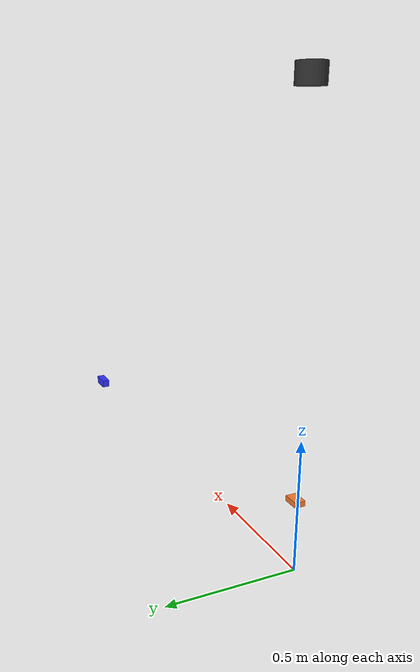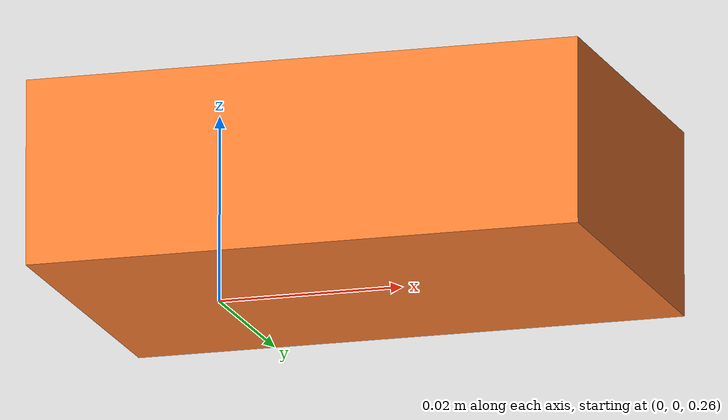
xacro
<robot name="cartographer_backpack_3d">
  <!-- ─────────── Materials (optional, for RViz) ─────────── -->
  <material name="orange"> <color rgba="1 0.5 0.2 1"/> </material>
  <material name="grey">   <color rgba="0.2 0.2 0.2 1"/> </material>
  <material name="blue">   <color rgba="0.2 0.2 1 1"/> </material>

  <!-- ─────────── Links ─────────── -->
  <link name="base_link"/>

  <link name="imu_link">
    <visual>
      <origin xyz="0 0 0"/>
      <geometry> <box size="0.06 0.04 0.02"/> </geometry>
      <material name="orange"/>
    </visual>
  </link>

  <link name="velodyne">
    <visual>
      <origin xyz="0 0 0"/>
      <geometry> <cylinder radius="0.05" length="0.07"/> </geometry>
      <material name="grey"/>
    </visual>
  </link>

  <link name="camera_link">
    <visual>
      <origin xyz="0 0 0"/>
      <geometry> <box size="0.1 0.04 0.04"/> </geometry>
      <material name="blue"/>
    </visual>
  </link>

  <link name="camera_color_optical_frame"/>

  <joint name="camera_optical_joint" type="fixed">
    <parent link="camera_link"/>
    <child  link="camera_color_optical_frame"/>
    <!-- Rotation to create an optical frame: +Z forward, +X right, +Y down -->
    <origin xyz="0 0 0" rpy="-1.5708 0 -1.5708"/>
  </joint>

  <!-- ─────────── Joints / Fixed transforms ─────────── -->
  <joint name="imu_joint" type="fixed">
    <parent link="base_link"/>
    <child  link="imu_link"/>
    <origin xyz="0.01496 0.00001 0.270" rpy="0 0 0"/>
  </joint>

  <joint name="lidar_joint" type="fixed">
    <parent link="base_link"/>
    <child  link="velodyne"/>
    <origin xyz="0.06153 0.00040 1.65547" rpy="0 0 0"/>
  </joint>

  <joint name="camera_joint" type="fixed">
    <parent link="base_link"/>
    <child  link="camera_link"/>
    <origin xyz="2.11000 0.0 0.00000" rpy="0 0 0"/>
  </joint>
</robot>
